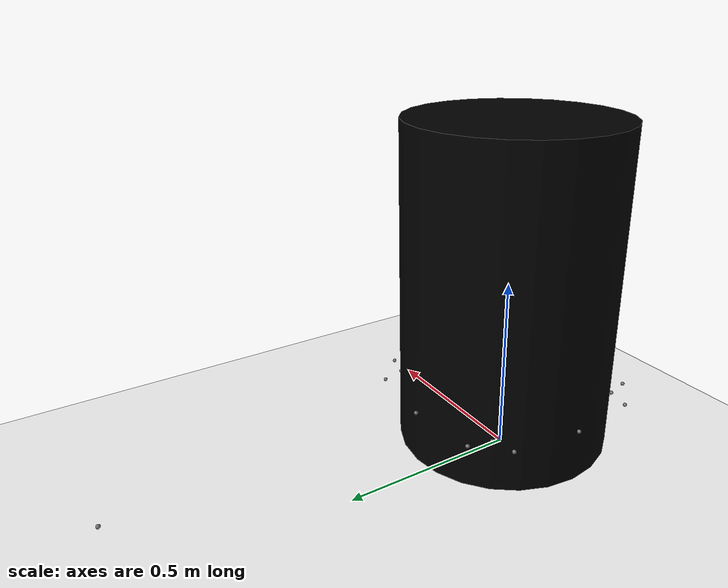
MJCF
<mujoco model="pr2_model">
    <worldbody name="base">
        <geom name="ground_plane" type="plane" pos="0 0 -0.1" size="20 20 .05" rgba="1. 1. 1. 0.5" friction="1. 1. 1." />
        <camera name="overhead_camera" pos="0 0.0 25" quat="0.707 0 0 -0.707" />
        <body name="pr2" pos="0 0 0.5">
            <joint axis="1 0 0" name="robot_x" type="slide" pos="0 0 0" />
            <joint axis="0 1 0" name="robot_y" type="slide" pos="0 0 0" />
            <site name="body_1" pos="0.3 0 0" zaxis="1 0 0" />
            <site name="body_2" pos="0.276 0.195 -0.3" zaxis="0.924 0.0585 0" />
            <site name="body_3" pos="0.212 0.212 -0.3" zaxis="0.707 0.707 0" />
            <site name="body_4" pos="0.195 0.276 -0.3" zaxis="0.0585 0.924 0" />

            <site name="body_5" pos="0 0.3 -0.3" zaxis="0 1 0"/>
            <site name="body_6" pos="-0.195 0.276 -0.30" zaxis="-0.0585 0.924 0"/>
            <site name="body_7" pos="-0.212 0.212 -0.30" zaxis="-0.707 0.707 0"/>
            <site name="body_8" pos="-0.276 0.195 -0.30" zaxis="-0.924 0.0585 0"/>

            <site name="body_9" pos="-0.3 0 -0.3" zaxis="-1 0 0"/>
            <site name="body_10" pos="-0.276 -0.195 -0.30" zaxis="-0.924 -0.0585 0"/>
            <site name="body_11" pos="-0.212 -0.212 -0.30" zaxis="-0.707 -0.707 0"/>
            <site name="body_12" pos="-0.195 -0.276 -0.30" zaxis="-0.0585 -0.924 0"/>

            <site name="body_13" pos="0 -0.3 -0.3" zaxis="0 -1 0"/>
            <site name="body_14" pos="0.195 -0.276 -0.3" zaxis="0.0585 -0.924 0"/>
            <site name="body_15" pos="0.212 -0.212 -0.3" zaxis="0.707 -0.707 0"/>
            <site name="body_16" pos="0.276 -0.195 -0.3" zaxis="0.924 -0.0585 0"/>

            <site name="body_17" pos="0 1.1 -0.3" zaxis="0 1 0"/>
            <geom name="pr2" type="cylinder" size="0.295 0.45" mass="5" rgba="0 0 0 1"/>
            <joint axis="0 0 1" name="robot_theta" type="hinge" pos="0 0 0" limited="false"/>
        </body>
    </worldbody>

    <actuator>
        <velocity kv="500" joint="robot_x" name="robot_x" ctrllimited="true" ctrlrange="-20 20" />
        <velocity kv="500" joint="robot_y" name="robot_y" ctrllimited="true" ctrlrange="-20 20" />
        <velocity kv="100" joint="robot_theta" name="robot_theta" ctrllimited="true" ctrlrange="-20 20" />
    </actuator>

    <sensor>
        <rangefinder name="lidar_1" site="body_1" cutoff="2.5" />
        <rangefinder name="lidar_2" site="body_2" cutoff="2.5" />
        <rangefinder name="lidar_3" site="body_3" cutoff="2.5" />
        <rangefinder name="lidar_4" site="body_4" cutoff="4.5" />
        <rangefinder name="lidar_5" site="body_5" cutoff="2.5" />
        <rangefinder name="lidar_6" site="body_6" cutoff="2.6" />
        <rangefinder name="lidar_7" site="body_7" cutoff="2.5" />
        <rangefinder name="lidar_8" site="body_8" cutoff="2.5" />
        <rangefinder name="lidar_9" site="body_9" cutoff="2.5" />
        <rangefinder name="lidar_10" site="body_10" cutoff="2.5" />
        <rangefinder name="lidar_11" site="body_11" cutoff="2.5" />
        <rangefinder name="lidar_12" site="body_12" cutoff="2.5" />
        <rangefinder name="lidar_13" site="body_13" cutoff="2.5" />
        <rangefinder name="lidar_14" site="body_14" cutoff="2.5" />
        <rangefinder name="lidar_15" site="body_15" cutoff="2.5" />
        <rangefinder name="lidar_16" site="body_16" cutoff="2.5" />
        <rangefinder name="far_forward" site="body_17" cutoff="2.5" />
    </sensor>
</mujoco>
